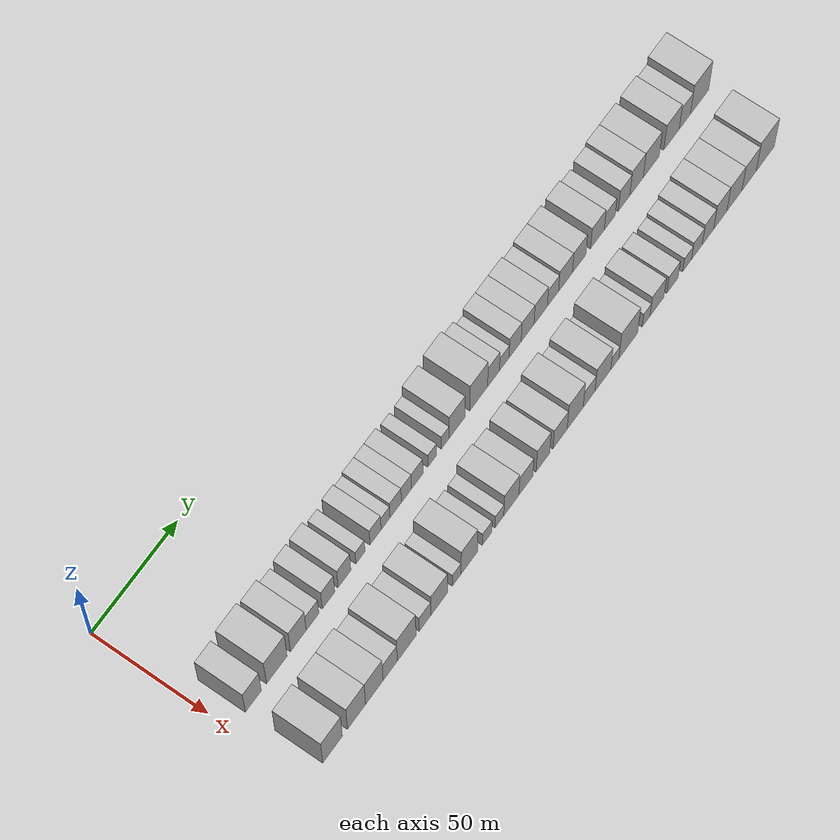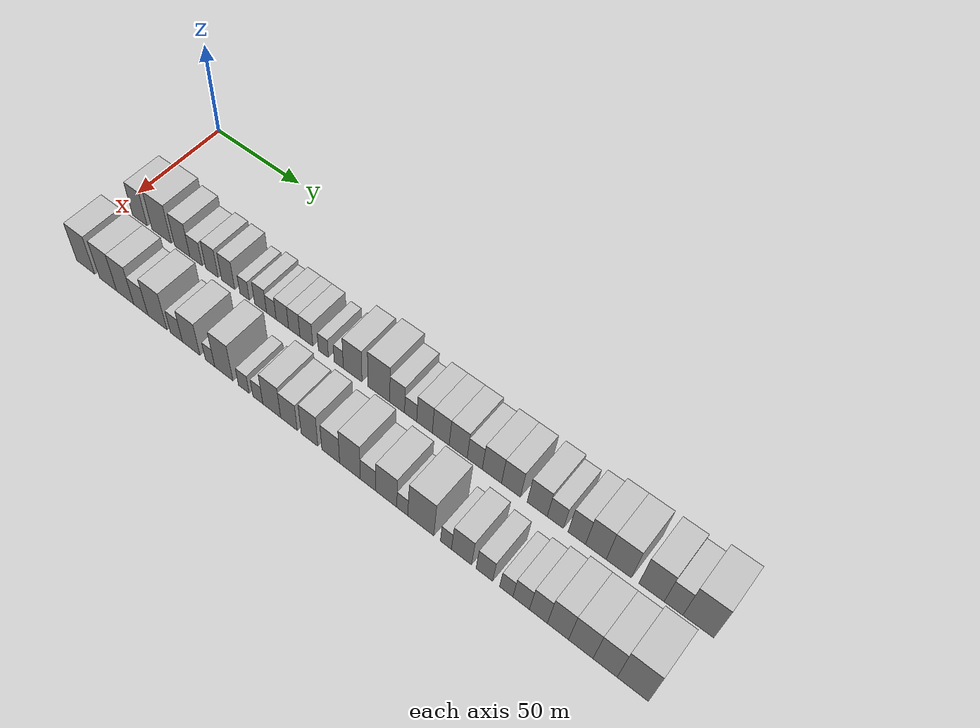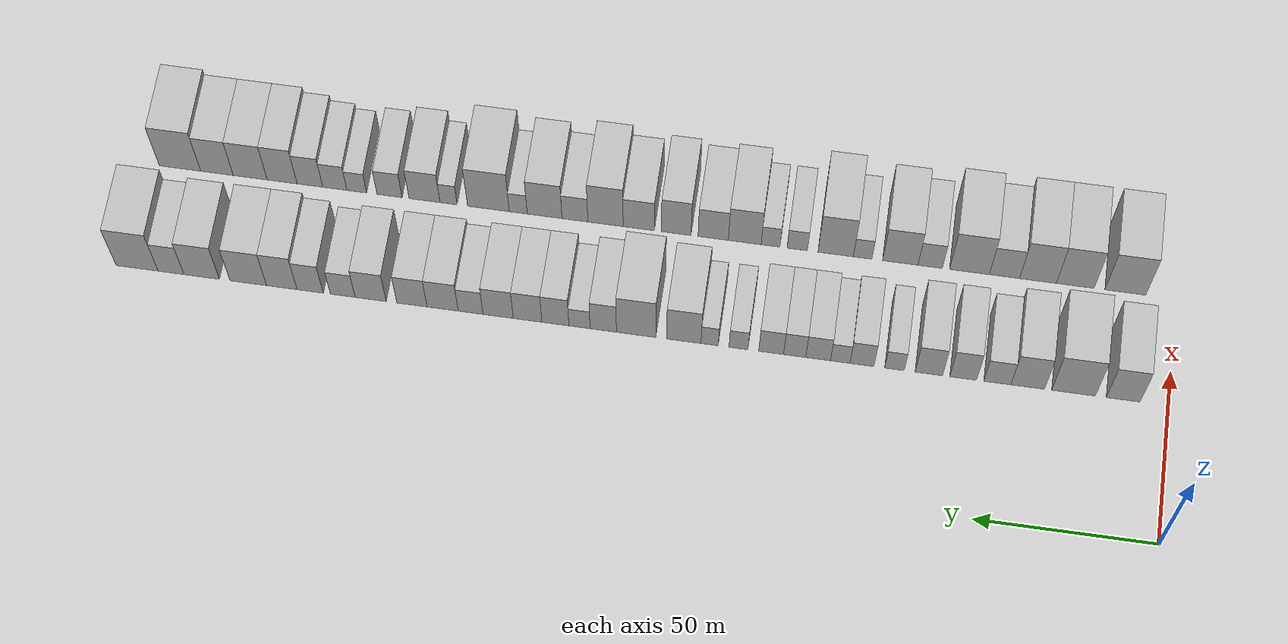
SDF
<sdf version="1.6">
 <world name="default">
  <model name="building_35">
   <static>1</static>
   <pose>50.0000 12.4085 0 0.000000 0.000000 0.000000</pose>
   <link name="link">
    <pose>0 0 10.50 0 0 0</pose>
    <collision name="collision"><geometry><box><size>20.0000 9.2569 21.0000</size></box></geometry></collision>
    <visual name="visual">
     <cast_shadows>0</cast_shadows>
     <geometry><box><size>20.0000 9.2569 21.0000</size></box></geometry>
     <material>
      <script>
       <uri>model://HANNAS_wall/materials/scripts</uri>
       <uri>model://HANNAS_wall/materials/textures</uri>
       <name>vrc/HANNAS_wall</name>
      </script>
     </material>
    </visual>
   </link>
  </model>
  <model name="building_36">
   <static>1</static>
   <pose>50.0000 26.0304 0 0.000000 0.000000 0.000000</pose>
   <link name="link">
    <pose>0 0 12.00 0 0 0</pose>
    <collision name="collision"><geometry><box><size>20.0000 11.9869 24.0000</size></box></geometry></collision>
    <visual name="visual">
     <cast_shadows>0</cast_shadows>
     <geometry><box><size>20.0000 11.9869 24.0000</size></box></geometry>
     <material>
      <script>
       <uri>model://HANNAS_wall/materials/scripts</uri>
       <uri>model://HANNAS_wall/materials/textures</uri>
       <name>vrc/HANNAS_wall</name>
      </script>
     </material>
    </visual>
   </link>
  </model>
  <model name="building_37">
   <static>1</static>
   <pose>50.0000 38.6332 0 0.000000 0.000000 0.000000</pose>
   <link name="link">
    <pose>0 0 10.50 0 0 0</pose>
    <collision name="collision"><geometry><box><size>20.0000 9.2187 21.0000</size></box></geometry></collision>
    <visual name="visual">
     <cast_shadows>0</cast_shadows>
     <geometry><box><size>20.0000 9.2187 21.0000</size></box></geometry>
     <material>
      <script>
       <uri>model://HANNAS_wall/materials/scripts</uri>
       <uri>model://HANNAS_wall/materials/textures</uri>
       <name>vrc/HANNAS_wall</name>
      </script>
     </material>
    </visual>
   </link>
  </model>
  <model name="building_38">
   <static>1</static>
   <pose>50.0000 46.9688 0 0.000000 0.000000 0.000000</pose>
   <link name="link">
    <pose>0 0 7.50 0 0 0</pose>
    <collision name="collision"><geometry><box><size>20.0000 7.4526 15.0000</size></box></geometry></collision>
    <visual name="visual">
     <cast_shadows>0</cast_shadows>
     <geometry><box><size>20.0000 7.4526 15.0000</size></box></geometry>
     <material>
      <script>
       <uri>model://HANNAS_wall/materials/scripts</uri>
       <uri>model://HANNAS_wall/materials/textures</uri>
       <name>vrc/HANNAS_wall</name>
      </script>
     </material>
    </visual>
   </link>
  </model>
  <model name="building_39">
   <static>1</static>
   <pose>50.0000 56.3891 0 0.000000 0.000000 0.000000</pose>
   <link name="link">
    <pose>0 0 9.00 0 0 0</pose>
    <collision name="collision"><geometry><box><size>20.0000 7.3880 18.0000</size></box></geometry></collision>
    <visual name="visual">
     <cast_shadows>0</cast_shadows>
     <geometry><box><size>20.0000 7.3880 18.0000</size></box></geometry>
     <material>
      <script>
       <uri>model://HANNAS_wall/materials/scripts</uri>
       <uri>model://HANNAS_wall/materials/textures</uri>
       <name>vrc/HANNAS_wall</name>
      </script>
     </material>
    </visual>
   </link>
  </model>
  <model name="building_40">
   <static>1</static>
   <pose>50.0000 65.8690 0 0.000000 0.000000 0.000000</pose>
   <link name="link">
    <pose>0 0 9.00 0 0 0</pose>
    <collision name="collision"><geometry><box><size>20.0000 7.5716 18.0000</size></box></geometry></collision>
    <visual name="visual">
     <cast_shadows>0</cast_shadows>
     <geometry><box><size>20.0000 7.5716 18.0000</size></box></geometry>
     <material>
      <script>
       <uri>model://HANNAS_wall/materials/scripts</uri>
       <uri>model://HANNAS_wall/materials/textures</uri>
       <name>vrc/HANNAS_wall</name>
      </script>
     </material>
    </visual>
   </link>
  </model>
  <model name="building_41">
   <static>1</static>
   <pose>50.0000 75.3594 0 0.000000 0.000000 0.000000</pose>
   <link name="link">
    <pose>0 0 6.00 0 0 0</pose>
    <collision name="collision"><geometry><box><size>20.0000 5.4093 12.0000</size></box></geometry></collision>
    <visual name="visual">
     <cast_shadows>0</cast_shadows>
     <geometry><box><size>20.0000 5.4093 12.0000</size></box></geometry>
     <material>
      <script>
       <uri>model://HANNAS_wall/materials/scripts</uri>
       <uri>model://HANNAS_wall/materials/textures</uri>
       <name>vrc/HANNAS_wall</name>
      </script>
     </material>
    </visual>
   </link>
  </model>
  <model name="building_42">
   <static>1</static>
   <pose>50.0000 84.3849 0 0.000000 0.000000 0.000000</pose>
   <link name="link">
    <pose>0 0 7.50 0 0 0</pose>
    <collision name="collision"><geometry><box><size>20.0000 6.6418 15.0000</size></box></geometry></collision>
    <visual name="visual">
     <cast_shadows>0</cast_shadows>
     <geometry><box><size>20.0000 6.6418 15.0000</size></box></geometry>
     <material>
      <script>
       <uri>model://HANNAS_wall/materials/scripts</uri>
       <uri>model://HANNAS_wall/materials/textures</uri>
       <name>vrc/HANNAS_wall</name>
      </script>
     </material>
    </visual>
   </link>
  </model>
  <model name="building_43">
   <static>1</static>
   <pose>50.0000 90.3973 0 0.000000 0.000000 0.000000</pose>
   <link name="link">
    <pose>0 0 6.00 0 0 0</pose>
    <collision name="collision"><geometry><box><size>20.0000 5.3829 12.0000</size></box></geometry></collision>
    <visual name="visual">
     <cast_shadows>0</cast_shadows>
     <geometry><box><size>20.0000 5.3829 12.0000</size></box></geometry>
     <material>
      <script>
       <uri>model://HANNAS_wall/materials/scripts</uri>
       <uri>model://HANNAS_wall/materials/textures</uri>
       <name>vrc/HANNAS_wall</name>
      </script>
     </material>
    </visual>
   </link>
  </model>
  <model name="building_44">
   <static>1</static>
   <pose>50.0000 96.5161 0 0.000000 0.000000 0.000000</pose>
   <link name="link">
    <pose>0 0 7.50 0 0 0</pose>
    <collision name="collision"><geometry><box><size>20.0000 6.8548 15.0000</size></box></geometry></collision>
    <visual name="visual">
     <cast_shadows>0</cast_shadows>
     <geometry><box><size>20.0000 6.8548 15.0000</size></box></geometry>
     <material>
      <script>
       <uri>model://HANNAS_wall/materials/scripts</uri>
       <uri>model://HANNAS_wall/materials/textures</uri>
       <name>vrc/HANNAS_wall</name>
      </script>
     </material>
    </visual>
   </link>
  </model>
  <model name="building_45">
   <static>1</static>
   <pose>50.0000 103.0263 0 0.000000 0.000000 0.000000</pose>
   <link name="link">
    <pose>0 0 7.50 0 0 0</pose>
    <collision name="collision"><geometry><box><size>20.0000 6.1654 15.0000</size></box></geometry></collision>
    <visual name="visual">
     <cast_shadows>0</cast_shadows>
     <geometry><box><size>20.0000 6.1654 15.0000</size></box></geometry>
     <material>
      <script>
       <uri>model://HANNAS_wall/materials/scripts</uri>
       <uri>model://HANNAS_wall/materials/textures</uri>
       <name>vrc/HANNAS_wall</name>
      </script>
     </material>
    </visual>
   </link>
  </model>
  <model name="building_46">
   <static>1</static>
   <pose>50.0000 109.5577 0 0.000000 0.000000 0.000000</pose>
   <link name="link">
    <pose>0 0 7.50 0 0 0</pose>
    <collision name="collision"><geometry><box><size>20.0000 6.8975 15.0000</size></box></geometry></collision>
    <visual name="visual">
     <cast_shadows>0</cast_shadows>
     <geometry><box><size>20.0000 6.8975 15.0000</size></box></geometry>
     <material>
      <script>
       <uri>model://HANNAS_wall/materials/scripts</uri>
       <uri>model://HANNAS_wall/materials/textures</uri>
       <name>vrc/HANNAS_wall</name>
      </script>
     </material>
    </visual>
   </link>
  </model>
  <model name="building_47">
   <static>1</static>
   <pose>50.0000 118.6466 0 0.000000 0.000000 0.000000</pose>
   <link name="link">
    <pose>0 0 6.00 0 0 0</pose>
    <collision name="collision"><geometry><box><size>20.0000 5.2803 12.0000</size></box></geometry></collision>
    <visual name="visual">
     <cast_shadows>0</cast_shadows>
     <geometry><box><size>20.0000 5.2803 12.0000</size></box></geometry>
     <material>
      <script>
       <uri>model://HANNAS_wall/materials/scripts</uri>
       <uri>model://HANNAS_wall/materials/textures</uri>
       <name>vrc/HANNAS_wall</name>
      </script>
     </material>
    </visual>
   </link>
  </model>
  <model name="building_48">
   <static>1</static>
   <pose>50.0000 126.6877 0 0.000000 0.000000 0.000000</pose>
   <link name="link">
    <pose>0 0 6.00 0 0 0</pose>
    <collision name="collision"><geometry><box><size>20.0000 4.8019 12.0000</size></box></geometry></collision>
    <visual name="visual">
     <cast_shadows>0</cast_shadows>
     <geometry><box><size>20.0000 4.8019 12.0000</size></box></geometry>
     <material>
      <script>
       <uri>model://HANNAS_wall/materials/scripts</uri>
       <uri>model://HANNAS_wall/materials/textures</uri>
       <name>vrc/HANNAS_wall</name>
      </script>
     </material>
    </visual>
   </link>
  </model>
  <model name="building_49">
   <static>1</static>
   <pose>50.0000 133.8981 0 0.000000 0.000000 0.000000</pose>
   <link name="link">
    <pose>0 0 10.50 0 0 0</pose>
    <collision name="collision"><geometry><box><size>20.0000 9.6188 21.0000</size></box></geometry></collision>
    <visual name="visual">
     <cast_shadows>0</cast_shadows>
     <geometry><box><size>20.0000 9.6188 21.0000</size></box></geometry>
     <material>
      <script>
       <uri>model://HANNAS_wall/materials/scripts</uri>
       <uri>model://HANNAS_wall/materials/textures</uri>
       <name>vrc/HANNAS_wall</name>
      </script>
     </material>
    </visual>
   </link>
  </model>
  <model name="building_50">
   <static>1</static>
   <pose>50.0000 147.2006 0 0.000000 0.000000 0.000000</pose>
   <link name="link">
    <pose>0 0 12.00 0 0 0</pose>
    <collision name="collision"><geometry><box><size>20.0000 10.9862 24.0000</size></box></geometry></collision>
    <visual name="visual">
     <cast_shadows>0</cast_shadows>
     <geometry><box><size>20.0000 10.9862 24.0000</size></box></geometry>
     <material>
      <script>
       <uri>model://HANNAS_wall/materials/scripts</uri>
       <uri>model://HANNAS_wall/materials/textures</uri>
       <name>vrc/HANNAS_wall</name>
      </script>
     </material>
    </visual>
   </link>
  </model>
  <model name="building_51">
   <static>1</static>
   <pose>50.0000 156.3773 0 0.000000 0.000000 0.000000</pose>
   <link name="link">
    <pose>0 0 9.00 0 0 0</pose>
    <collision name="collision"><geometry><box><size>20.0000 7.3672 18.0000</size></box></geometry></collision>
    <visual name="visual">
     <cast_shadows>0</cast_shadows>
     <geometry><box><size>20.0000 7.3672 18.0000</size></box></geometry>
     <material>
      <script>
       <uri>model://HANNAS_wall/materials/scripts</uri>
       <uri>model://HANNAS_wall/materials/textures</uri>
       <name>vrc/HANNAS_wall</name>
      </script>
     </material>
    </visual>
   </link>
  </model>
  <model name="building_52">
   <static>1</static>
   <pose>50.0000 163.0314 0 0.000000 0.000000 0.000000</pose>
   <link name="link">
    <pose>0 0 6.00 0 0 0</pose>
    <collision name="collision"><geometry><box><size>20.0000 5.9410 12.0000</size></box></geometry></collision>
    <visual name="visual">
     <cast_shadows>0</cast_shadows>
     <geometry><box><size>20.0000 5.9410 12.0000</size></box></geometry>
     <material>
      <script>
       <uri>model://HANNAS_wall/materials/scripts</uri>
       <uri>model://HANNAS_wall/materials/textures</uri>
       <name>vrc/HANNAS_wall</name>
      </script>
     </material>
    </visual>
   </link>
  </model>
  <model name="building_53">
   <static>1</static>
   <pose>50.0000 169.7892 0 0.000000 0.000000 0.000000</pose>
   <link name="link">
    <pose>0 0 9.00 0 0 0</pose>
    <collision name="collision"><geometry><box><size>20.0000 7.5745 18.0000</size></box></geometry></collision>
    <visual name="visual">
     <cast_shadows>0</cast_shadows>
     <geometry><box><size>20.0000 7.5745 18.0000</size></box></geometry>
     <material>
      <script>
       <uri>model://HANNAS_wall/materials/scripts</uri>
       <uri>model://HANNAS_wall/materials/textures</uri>
       <name>vrc/HANNAS_wall</name>
      </script>
     </material>
    </visual>
   </link>
  </model>
  <model name="building_54">
   <static>1</static>
   <pose>50.0000 177.5934 0 0.000000 0.000000 0.000000</pose>
   <link name="link">
    <pose>0 0 9.00 0 0 0</pose>
    <collision name="collision"><geometry><box><size>20.0000 8.0339 18.0000</size></box></geometry></collision>
    <visual name="visual">
     <cast_shadows>0</cast_shadows>
     <geometry><box><size>20.0000 8.0339 18.0000</size></box></geometry>
     <material>
      <script>
       <uri>model://HANNAS_wall/materials/scripts</uri>
       <uri>model://HANNAS_wall/materials/textures</uri>
       <name>vrc/HANNAS_wall</name>
      </script>
     </material>
    </visual>
   </link>
  </model>
  <model name="building_55">
   <static>1</static>
   <pose>50.0000 185.8475 0 0.000000 0.000000 0.000000</pose>
   <link name="link">
    <pose>0 0 9.00 0 0 0</pose>
    <collision name="collision"><geometry><box><size>20.0000 8.4742 18.0000</size></box></geometry></collision>
    <visual name="visual">
     <cast_shadows>0</cast_shadows>
     <geometry><box><size>20.0000 8.4742 18.0000</size></box></geometry>
     <material>
      <script>
       <uri>model://HANNAS_wall/materials/scripts</uri>
       <uri>model://HANNAS_wall/materials/textures</uri>
       <name>vrc/HANNAS_wall</name>
      </script>
     </material>
    </visual>
   </link>
  </model>
  <model name="building_56">
   <static>1</static>
   <pose>50.0000 193.5864 0 0.000000 0.000000 0.000000</pose>
   <link name="link">
    <pose>0 0 7.50 0 0 0</pose>
    <collision name="collision"><geometry><box><size>20.0000 7.0035 15.0000</size></box></geometry></collision>
    <visual name="visual">
     <cast_shadows>0</cast_shadows>
     <geometry><box><size>20.0000 7.0035 15.0000</size></box></geometry>
     <material>
      <script>
       <uri>model://HANNAS_wall/materials/scripts</uri>
       <uri>model://HANNAS_wall/materials/textures</uri>
       <name>vrc/HANNAS_wall</name>
      </script>
     </material>
    </visual>
   </link>
  </model>
  <model name="building_57">
   <static>1</static>
   <pose>50.0000 201.4787 0 0.000000 0.000000 0.000000</pose>
   <link name="link">
    <pose>0 0 9.00 0 0 0</pose>
    <collision name="collision"><geometry><box><size>20.0000 8.7810 18.0000</size></box></geometry></collision>
    <visual name="visual">
     <cast_shadows>0</cast_shadows>
     <geometry><box><size>20.0000 8.7810 18.0000</size></box></geometry>
     <material>
      <script>
       <uri>model://HANNAS_wall/materials/scripts</uri>
       <uri>model://HANNAS_wall/materials/textures</uri>
       <name>vrc/HANNAS_wall</name>
      </script>
     </material>
    </visual>
   </link>
  </model>
  <model name="building_58">
   <static>1</static>
   <pose>50.0000 210.1303 0 0.000000 0.000000 0.000000</pose>
   <link name="link">
    <pose>0 0 9.00 0 0 0</pose>
    <collision name="collision"><geometry><box><size>20.0000 8.5223 18.0000</size></box></geometry></collision>
    <visual name="visual">
     <cast_shadows>0</cast_shadows>
     <geometry><box><size>20.0000 8.5223 18.0000</size></box></geometry>
     <material>
      <script>
       <uri>model://HANNAS_wall/materials/scripts</uri>
       <uri>model://HANNAS_wall/materials/textures</uri>
       <name>vrc/HANNAS_wall</name>
      </script>
     </material>
    </visual>
   </link>
  </model>
  <model name="building_59">
   <static>1</static>
   <pose>50.0000 221.7778 0 0.000000 0.000000 0.000000</pose>
   <link name="link">
    <pose>0 0 9.00 0 0 0</pose>
    <collision name="collision"><geometry><box><size>20.0000 8.7728 18.0000</size></box></geometry></collision>
    <visual name="visual">
     <cast_shadows>0</cast_shadows>
     <geometry><box><size>20.0000 8.7728 18.0000</size></box></geometry>
     <material>
      <script>
       <uri>model://HANNAS_wall/materials/scripts</uri>
       <uri>model://HANNAS_wall/materials/textures</uri>
       <name>vrc/HANNAS_wall</name>
      </script>
     </material>
    </visual>
   </link>
  </model>
  <model name="building_60">
   <static>1</static>
   <pose>50.0000 229.6762 0 0.000000 0.000000 0.000000</pose>
   <link name="link">
    <pose>0 0 7.50 0 0 0</pose>
    <collision name="collision"><geometry><box><size>20.0000 7.0239 15.0000</size></box></geometry></collision>
    <visual name="visual">
     <cast_shadows>0</cast_shadows>
     <geometry><box><size>20.0000 7.0239 15.0000</size></box></geometry>
     <material>
      <script>
       <uri>model://HANNAS_wall/materials/scripts</uri>
       <uri>model://HANNAS_wall/materials/textures</uri>
       <name>vrc/HANNAS_wall</name>
      </script>
     </material>
    </visual>
   </link>
  </model>
  <model name="building_61">
   <static>1</static>
   <pose>50.0000 238.8993 0 0.000000 0.000000 0.000000</pose>
   <link name="link">
    <pose>0 0 9.00 0 0 0</pose>
    <collision name="collision"><geometry><box><size>20.0000 7.4224 18.0000</size></box></geometry></collision>
    <visual name="visual">
     <cast_shadows>0</cast_shadows>
     <geometry><box><size>20.0000 7.4224 18.0000</size></box></geometry>
     <material>
      <script>
       <uri>model://HANNAS_wall/materials/scripts</uri>
       <uri>model://HANNAS_wall/materials/textures</uri>
       <name>vrc/HANNAS_wall</name>
      </script>
     </material>
    </visual>
   </link>
  </model>
  <model name="building_62">
   <static>1</static>
   <pose>50.0000 246.9462 0 0.000000 0.000000 0.000000</pose>
   <link name="link">
    <pose>0 0 10.50 0 0 0</pose>
    <collision name="collision"><geometry><box><size>20.0000 8.6713 21.0000</size></box></geometry></collision>
    <visual name="visual">
     <cast_shadows>0</cast_shadows>
     <geometry><box><size>20.0000 8.6713 21.0000</size></box></geometry>
     <material>
      <script>
       <uri>model://HANNAS_wall/materials/scripts</uri>
       <uri>model://HANNAS_wall/materials/textures</uri>
       <name>vrc/HANNAS_wall</name>
      </script>
     </material>
    </visual>
   </link>
  </model>
  <model name="building_63">
   <static>1</static>
   <pose>50.0000 256.4718 0 0.000000 0.000000 0.000000</pose>
   <link name="link">
    <pose>0 0 10.50 0 0 0</pose>
    <collision name="collision"><geometry><box><size>20.0000 10.3799 21.0000</size></box></geometry></collision>
    <visual name="visual">
     <cast_shadows>0</cast_shadows>
     <geometry><box><size>20.0000 10.3799 21.0000</size></box></geometry>
     <material>
      <script>
       <uri>model://HANNAS_wall/materials/scripts</uri>
       <uri>model://HANNAS_wall/materials/textures</uri>
       <name>vrc/HANNAS_wall</name>
      </script>
     </material>
    </visual>
   </link>
  </model>
  <model name="building_64">
   <static>1</static>
   <pose>50.0000 269.7114 0 0.000000 0.000000 0.000000</pose>
   <link name="link">
    <pose>0 0 10.50 0 0 0</pose>
    <collision name="collision"><geometry><box><size>20.0000 10.0992 21.0000</size></box></geometry></collision>
    <visual name="visual">
     <cast_shadows>0</cast_shadows>
     <geometry><box><size>20.0000 10.0992 21.0000</size></box></geometry>
     <material>
      <script>
       <uri>model://HANNAS_wall/materials/scripts</uri>
       <uri>model://HANNAS_wall/materials/textures</uri>
       <name>vrc/HANNAS_wall</name>
      </script>
     </material>
    </visual>
   </link>
  </model>
  <model name="building_65">
   <static>1</static>
   <pose>50.0000 278.4431 0 0.000000 0.000000 0.000000</pose>
   <link name="link">
    <pose>0 0 9.00 0 0 0</pose>
    <collision name="collision"><geometry><box><size>20.0000 7.3643 18.0000</size></box></geometry></collision>
    <visual name="visual">
     <cast_shadows>0</cast_shadows>
     <geometry><box><size>20.0000 7.3643 18.0000</size></box></geometry>
     <material>
      <script>
       <uri>model://HANNAS_wall/materials/scripts</uri>
       <uri>model://HANNAS_wall/materials/textures</uri>
       <name>vrc/HANNAS_wall</name>
      </script>
     </material>
    </visual>
   </link>
  </model>
  <model name="building_66">
   <static>1</static>
   <pose>50.0000 288.1061 0 0.000000 0.000000 0.000000</pose>
   <link name="link">
    <pose>0 0 12.00 0 0 0</pose>
    <collision name="collision"><geometry><box><size>20.0000 11.9617 24.0000</size></box></geometry></collision>
    <visual name="visual">
     <cast_shadows>0</cast_shadows>
     <geometry><box><size>20.0000 11.9617 24.0000</size></box></geometry>
     <material>
      <script>
       <uri>model://HANNAS_wall/materials/scripts</uri>
       <uri>model://HANNAS_wall/materials/textures</uri>
       <name>vrc/HANNAS_wall</name>
      </script>
     </material>
    </visual>
   </link>
  </model>
  <model name="building_94">
   <static>1</static>
   <pose>82.0000 14.1284 0 0.000000 0.000000 0.000000</pose>
   <link name="link">
    <pose>0 0 12.00 0 0 0</pose>
    <collision name="collision"><geometry><box><size>20.0000 11.4049 24.0000</size></box></geometry></collision>
    <visual name="visual">
     <cast_shadows>0</cast_shadows>
     <geometry><box><size>20.0000 11.4049 24.0000</size></box></geometry>
     <material>
      <script>
       <uri>model://HANNAS_wall/materials/scripts</uri>
       <uri>model://HANNAS_wall/materials/textures</uri>
       <name>vrc/HANNAS_wall</name>
      </script>
     </material>
    </visual>
   </link>
  </model>
  <model name="building_95">
   <static>1</static>
   <pose>82.0000 28.1155 0 0.000000 0.000000 0.000000</pose>
   <link name="link">
    <pose>0 0 12.00 0 0 0</pose>
    <collision name="collision"><geometry><box><size>20.0000 10.5695 24.0000</size></box></geometry></collision>
    <visual name="visual">
     <cast_shadows>0</cast_shadows>
     <geometry><box><size>20.0000 10.5695 24.0000</size></box></geometry>
     <material>
      <script>
       <uri>model://HANNAS_wall/materials/scripts</uri>
       <uri>model://HANNAS_wall/materials/textures</uri>
       <name>vrc/HANNAS_wall</name>
      </script>
     </material>
    </visual>
   </link>
  </model>
  <model name="building_96">
   <static>1</static>
   <pose>82.0000 38.5590 0 0.000000 0.000000 0.000000</pose>
   <link name="link">
    <pose>0 0 12.00 0 0 0</pose>
    <collision name="collision"><geometry><box><size>20.0000 10.3175 24.0000</size></box></geometry></collision>
    <visual name="visual">
     <cast_shadows>0</cast_shadows>
     <geometry><box><size>20.0000 10.3175 24.0000</size></box></geometry>
     <material>
      <script>
       <uri>model://HANNAS_wall/materials/scripts</uri>
       <uri>model://HANNAS_wall/materials/textures</uri>
       <name>vrc/HANNAS_wall</name>
      </script>
     </material>
    </visual>
   </link>
  </model>
  <model name="building_97">
   <static>1</static>
   <pose>82.0000 47.9423 0 0.000000 0.000000 0.000000</pose>
   <link name="link">
    <pose>0 0 9.00 0 0 0</pose>
    <collision name="collision"><geometry><box><size>20.0000 8.4489 18.0000</size></box></geometry></collision>
    <visual name="visual">
     <cast_shadows>0</cast_shadows>
     <geometry><box><size>20.0000 8.4489 18.0000</size></box></geometry>
     <material>
      <script>
       <uri>model://HANNAS_wall/materials/scripts</uri>
       <uri>model://HANNAS_wall/materials/textures</uri>
       <name>vrc/HANNAS_wall</name>
      </script>
     </material>
    </visual>
   </link>
  </model>
  <model name="building_98">
   <static>1</static>
   <pose>82.0000 57.7339 0 0.000000 0.000000 0.000000</pose>
   <link name="link">
    <pose>0 0 12.00 0 0 0</pose>
    <collision name="collision"><geometry><box><size>20.0000 11.1344 24.0000</size></box></geometry></collision>
    <visual name="visual">
     <cast_shadows>0</cast_shadows>
     <geometry><box><size>20.0000 11.1344 24.0000</size></box></geometry>
     <material>
      <script>
       <uri>model://HANNAS_wall/materials/scripts</uri>
       <uri>model://HANNAS_wall/materials/textures</uri>
       <name>vrc/HANNAS_wall</name>
      </script>
     </material>
    </visual>
   </link>
  </model>
  <model name="building_99">
   <static>1</static>
   <pose>82.0000 68.7336 0 0.000000 0.000000 0.000000</pose>
   <link name="link">
    <pose>0 0 7.50 0 0 0</pose>
    <collision name="collision"><geometry><box><size>20.0000 6.8648 15.0000</size></box></geometry></collision>
    <visual name="visual">
     <cast_shadows>0</cast_shadows>
     <geometry><box><size>20.0000 6.8648 15.0000</size></box></geometry>
     <material>
      <script>
       <uri>model://HANNAS_wall/materials/scripts</uri>
       <uri>model://HANNAS_wall/materials/textures</uri>
       <name>vrc/HANNAS_wall</name>
      </script>
     </material>
    </visual>
   </link>
  </model>
  <model name="building_100">
   <static>1</static>
   <pose>82.0000 77.1396 0 0.000000 0.000000 0.000000</pose>
   <link name="link">
    <pose>0 0 10.50 0 0 0</pose>
    <collision name="collision"><geometry><box><size>20.0000 9.9472 21.0000</size></box></geometry></collision>
    <visual name="visual">
     <cast_shadows>0</cast_shadows>
     <geometry><box><size>20.0000 9.9472 21.0000</size></box></geometry>
     <material>
      <script>
       <uri>model://HANNAS_wall/materials/scripts</uri>
       <uri>model://HANNAS_wall/materials/textures</uri>
       <name>vrc/HANNAS_wall</name>
      </script>
     </material>
    </visual>
   </link>
  </model>
  <model name="building_101">
   <static>1</static>
   <pose>82.0000 87.7354 0 0.000000 0.000000 0.000000</pose>
   <link name="link">
    <pose>0 0 6.00 0 0 0</pose>
    <collision name="collision"><geometry><box><size>20.0000 5.2445 12.0000</size></box></geometry></collision>
    <visual name="visual">
     <cast_shadows>0</cast_shadows>
     <geometry><box><size>20.0000 5.2445 12.0000</size></box></geometry>
     <material>
      <script>
       <uri>model://HANNAS_wall/materials/scripts</uri>
       <uri>model://HANNAS_wall/materials/textures</uri>
       <name>vrc/HANNAS_wall</name>
      </script>
     </material>
    </visual>
   </link>
  </model>
  <model name="building_102">
   <static>1</static>
   <pose>82.0000 95.3330 0 0.000000 0.000000 0.000000</pose>
   <link name="link">
    <pose>0 0 12.00 0 0 0</pose>
    <collision name="collision"><geometry><box><size>20.0000 9.9505 24.0000</size></box></geometry></collision>
    <visual name="visual">
     <cast_shadows>0</cast_shadows>
     <geometry><box><size>20.0000 9.9505 24.0000</size></box></geometry>
     <material>
      <script>
       <uri>model://HANNAS_wall/materials/scripts</uri>
       <uri>model://HANNAS_wall/materials/textures</uri>
       <name>vrc/HANNAS_wall</name>
      </script>
     </material>
    </visual>
   </link>
  </model>
  <model name="building_103">
   <static>1</static>
   <pose>82.0000 106.1833 0 0.000000 0.000000 0.000000</pose>
   <link name="link">
    <pose>0 0 6.00 0 0 0</pose>
    <collision name="collision"><geometry><box><size>20.0000 5.7502 12.0000</size></box></geometry></collision>
    <visual name="visual">
     <cast_shadows>0</cast_shadows>
     <geometry><box><size>20.0000 5.7502 12.0000</size></box></geometry>
     <material>
      <script>
       <uri>model://HANNAS_wall/materials/scripts</uri>
       <uri>model://HANNAS_wall/materials/textures</uri>
       <name>vrc/HANNAS_wall</name>
      </script>
     </material>
    </visual>
   </link>
  </model>
  <model name="building_104">
   <static>1</static>
   <pose>82.0000 113.7118 0 0.000000 0.000000 0.000000</pose>
   <link name="link">
    <pose>0 0 6.00 0 0 0</pose>
    <collision name="collision"><geometry><box><size>20.0000 5.3068 12.0000</size></box></geometry></collision>
    <visual name="visual">
     <cast_shadows>0</cast_shadows>
     <geometry><box><size>20.0000 5.3068 12.0000</size></box></geometry>
     <material>
      <script>
       <uri>model://HANNAS_wall/materials/scripts</uri>
       <uri>model://HANNAS_wall/materials/textures</uri>
       <name>vrc/HANNAS_wall</name>
      </script>
     </material>
    </visual>
   </link>
  </model>
  <model name="building_105">
   <static>1</static>
   <pose>82.0000 121.0133 0 0.000000 0.000000 0.000000</pose>
   <link name="link">
    <pose>0 0 10.50 0 0 0</pose>
    <collision name="collision"><geometry><box><size>20.0000 9.2962 21.0000</size></box></geometry></collision>
    <visual name="visual">
     <cast_shadows>0</cast_shadows>
     <geometry><box><size>20.0000 9.2962 21.0000</size></box></geometry>
     <material>
      <script>
       <uri>model://HANNAS_wall/materials/scripts</uri>
       <uri>model://HANNAS_wall/materials/textures</uri>
       <name>vrc/HANNAS_wall</name>
      </script>
     </material>
    </visual>
   </link>
  </model>
  <model name="building_106">
   <static>1</static>
   <pose>82.0000 129.9487 0 0.000000 0.000000 0.000000</pose>
   <link name="link">
    <pose>0 0 9.00 0 0 0</pose>
    <collision name="collision"><geometry><box><size>20.0000 8.5746 18.0000</size></box></geometry></collision>
    <visual name="visual">
     <cast_shadows>0</cast_shadows>
     <geometry><box><size>20.0000 8.5746 18.0000</size></box></geometry>
     <material>
      <script>
       <uri>model://HANNAS_wall/materials/scripts</uri>
       <uri>model://HANNAS_wall/materials/textures</uri>
       <name>vrc/HANNAS_wall</name>
      </script>
     </material>
    </visual>
   </link>
  </model>
  <model name="building_107">
   <static>1</static>
   <pose>82.0000 140.4479 0 0.000000 0.000000 0.000000</pose>
   <link name="link">
    <pose>0 0 10.50 0 0 0</pose>
    <collision name="collision"><geometry><box><size>20.0000 8.4239 21.0000</size></box></geometry></collision>
    <visual name="visual">
     <cast_shadows>0</cast_shadows>
     <geometry><box><size>20.0000 8.4239 21.0000</size></box></geometry>
     <material>
      <script>
       <uri>model://HANNAS_wall/materials/scripts</uri>
       <uri>model://HANNAS_wall/materials/textures</uri>
       <name>vrc/HANNAS_wall</name>
      </script>
     </material>
    </visual>
   </link>
  </model>
  <model name="building_108">
   <static>1</static>
   <pose>82.0000 151.0749 0 0.000000 0.000000 0.000000</pose>
   <link name="link">
    <pose>0 0 9.00 0 0 0</pose>
    <collision name="collision"><geometry><box><size>20.0000 8.8301 18.0000</size></box></geometry></collision>
    <visual name="visual">
     <cast_shadows>0</cast_shadows>
     <geometry><box><size>20.0000 8.8301 18.0000</size></box></geometry>
     <material>
      <script>
       <uri>model://HANNAS_wall/materials/scripts</uri>
       <uri>model://HANNAS_wall/materials/textures</uri>
       <name>vrc/HANNAS_wall</name>
      </script>
     </material>
    </visual>
   </link>
  </model>
  <model name="building_109">
   <static>1</static>
   <pose>82.0000 160.5138 0 0.000000 0.000000 0.000000</pose>
   <link name="link">
    <pose>0 0 12.00 0 0 0</pose>
    <collision name="collision"><geometry><box><size>20.0000 10.0476 24.0000</size></box></geometry></collision>
    <visual name="visual">
     <cast_shadows>0</cast_shadows>
     <geometry><box><size>20.0000 10.0476 24.0000</size></box></geometry>
     <material>
      <script>
       <uri>model://HANNAS_wall/materials/scripts</uri>
       <uri>model://HANNAS_wall/materials/textures</uri>
       <name>vrc/HANNAS_wall</name>
      </script>
     </material>
    </visual>
   </link>
  </model>
  <model name="building_110">
   <static>1</static>
   <pose>82.0000 169.2278 0 0.000000 0.000000 0.000000</pose>
   <link name="link">
    <pose>0 0 7.50 0 0 0</pose>
    <collision name="collision"><geometry><box><size>20.0000 7.3805 15.0000</size></box></geometry></collision>
    <visual name="visual">
     <cast_shadows>0</cast_shadows>
     <geometry><box><size>20.0000 7.3805 15.0000</size></box></geometry>
     <material>
      <script>
       <uri>model://HANNAS_wall/materials/scripts</uri>
       <uri>model://HANNAS_wall/materials/textures</uri>
       <name>vrc/HANNAS_wall</name>
      </script>
     </material>
    </visual>
   </link>
  </model>
  <model name="building_111">
   <static>1</static>
   <pose>82.0000 177.8782 0 0.000000 0.000000 0.000000</pose>
   <link name="link">
    <pose>0 0 10.50 0 0 0</pose>
    <collision name="collision"><geometry><box><size>20.0000 9.9202 21.0000</size></box></geometry></collision>
    <visual name="visual">
     <cast_shadows>0</cast_shadows>
     <geometry><box><size>20.0000 9.9202 21.0000</size></box></geometry>
     <material>
      <script>
       <uri>model://HANNAS_wall/materials/scripts</uri>
       <uri>model://HANNAS_wall/materials/textures</uri>
       <name>vrc/HANNAS_wall</name>
      </script>
     </material>
    </visual>
   </link>
  </model>
  <model name="building_112">
   <static>1</static>
   <pose>82.0000 185.3984 0 0.000000 0.000000 0.000000</pose>
   <link name="link">
    <pose>0 0 6.00 0 0 0</pose>
    <collision name="collision"><geometry><box><size>20.0000 5.1202 12.0000</size></box></geometry></collision>
    <visual name="visual">
     <cast_shadows>0</cast_shadows>
     <geometry><box><size>20.0000 5.1202 12.0000</size></box></geometry>
     <material>
      <script>
       <uri>model://HANNAS_wall/materials/scripts</uri>
       <uri>model://HANNAS_wall/materials/textures</uri>
       <name>vrc/HANNAS_wall</name>
      </script>
     </material>
    </visual>
   </link>
  </model>
  <model name="building_113">
   <static>1</static>
   <pose>82.0000 193.9222 0 0.000000 0.000000 0.000000</pose>
   <link name="link">
    <pose>0 0 12.00 0 0 0</pose>
    <collision name="collision"><geometry><box><size>20.0000 11.9275 24.0000</size></box></geometry></collision>
    <visual name="visual">
     <cast_shadows>0</cast_shadows>
     <geometry><box><size>20.0000 11.9275 24.0000</size></box></geometry>
     <material>
      <script>
       <uri>model://HANNAS_wall/materials/scripts</uri>
       <uri>model://HANNAS_wall/materials/textures</uri>
       <name>vrc/HANNAS_wall</name>
      </script>
     </material>
    </visual>
   </link>
  </model>
  <model name="building_114">
   <static>1</static>
   <pose>82.0000 205.3388 0 0.000000 0.000000 0.000000</pose>
   <link name="link">
    <pose>0 0 6.00 0 0 0</pose>
    <collision name="collision"><geometry><box><size>20.0000 4.9057 12.0000</size></box></geometry></collision>
    <visual name="visual">
     <cast_shadows>0</cast_shadows>
     <geometry><box><size>20.0000 4.9057 12.0000</size></box></geometry>
     <material>
      <script>
       <uri>model://HANNAS_wall/materials/scripts</uri>
       <uri>model://HANNAS_wall/materials/textures</uri>
       <name>vrc/HANNAS_wall</name>
      </script>
     </material>
    </visual>
   </link>
  </model>
  <model name="building_115">
   <static>1</static>
   <pose>82.0000 212.2258 0 0.000000 0.000000 0.000000</pose>
   <link name="link">
    <pose>0 0 9.00 0 0 0</pose>
    <collision name="collision"><geometry><box><size>20.0000 8.8683 18.0000</size></box></geometry></collision>
    <visual name="visual">
     <cast_shadows>0</cast_shadows>
     <geometry><box><size>20.0000 8.8683 18.0000</size></box></geometry>
     <material>
      <script>
       <uri>model://HANNAS_wall/materials/scripts</uri>
       <uri>model://HANNAS_wall/materials/textures</uri>
       <name>vrc/HANNAS_wall</name>
      </script>
     </material>
    </visual>
   </link>
  </model>
  <model name="building_116">
   <static>1</static>
   <pose>82.0000 222.2559 0 0.000000 0.000000 0.000000</pose>
   <link name="link">
    <pose>0 0 7.50 0 0 0</pose>
    <collision name="collision"><geometry><box><size>20.0000 7.1918 15.0000</size></box></geometry></collision>
    <visual name="visual">
     <cast_shadows>0</cast_shadows>
     <geometry><box><size>20.0000 7.1918 15.0000</size></box></geometry>
     <material>
      <script>
       <uri>model://HANNAS_wall/materials/scripts</uri>
       <uri>model://HANNAS_wall/materials/textures</uri>
       <name>vrc/HANNAS_wall</name>
      </script>
     </material>
    </visual>
   </link>
  </model>
  <model name="building_117">
   <static>1</static>
   <pose>82.0000 231.6775 0 0.000000 0.000000 0.000000</pose>
   <link name="link">
    <pose>0 0 6.00 0 0 0</pose>
    <collision name="collision"><geometry><box><size>20.0000 5.6513 12.0000</size></box></geometry></collision>
    <visual name="visual">
     <cast_shadows>0</cast_shadows>
     <geometry><box><size>20.0000 5.6513 12.0000</size></box></geometry>
     <material>
      <script>
       <uri>model://HANNAS_wall/materials/scripts</uri>
       <uri>model://HANNAS_wall/materials/textures</uri>
       <name>vrc/HANNAS_wall</name>
      </script>
     </material>
    </visual>
   </link>
  </model>
  <model name="building_118">
   <static>1</static>
   <pose>82.0000 237.9705 0 0.000000 0.000000 0.000000</pose>
   <link name="link">
    <pose>0 0 7.50 0 0 0</pose>
    <collision name="collision"><geometry><box><size>20.0000 6.9347 15.0000</size></box></geometry></collision>
    <visual name="visual">
     <cast_shadows>0</cast_shadows>
     <geometry><box><size>20.0000 6.9347 15.0000</size></box></geometry>
     <material>
      <script>
       <uri>model://HANNAS_wall/materials/scripts</uri>
       <uri>model://HANNAS_wall/materials/textures</uri>
       <name>vrc/HANNAS_wall</name>
      </script>
     </material>
    </visual>
   </link>
  </model>
  <model name="building_119">
   <static>1</static>
   <pose>82.0000 245.1353 0 0.000000 0.000000 0.000000</pose>
   <link name="link">
    <pose>0 0 9.00 0 0 0</pose>
    <collision name="collision"><geometry><box><size>20.0000 7.3949 18.0000</size></box></geometry></collision>
    <visual name="visual">
     <cast_shadows>0</cast_shadows>
     <geometry><box><size>20.0000 7.3949 18.0000</size></box></geometry>
     <material>
      <script>
       <uri>model://HANNAS_wall/materials/scripts</uri>
       <uri>model://HANNAS_wall/materials/textures</uri>
       <name>vrc/HANNAS_wall</name>
      </script>
     </material>
    </visual>
   </link>
  </model>
  <model name="building_120">
   <static>1</static>
   <pose>82.0000 253.1562 0 0.000000 0.000000 0.000000</pose>
   <link name="link">
    <pose>0 0 10.50 0 0 0</pose>
    <collision name="collision"><geometry><box><size>20.0000 8.6468 21.0000</size></box></geometry></collision>
    <visual name="visual">
     <cast_shadows>0</cast_shadows>
     <geometry><box><size>20.0000 8.6468 21.0000</size></box></geometry>
     <material>
      <script>
       <uri>model://HANNAS_wall/materials/scripts</uri>
       <uri>model://HANNAS_wall/materials/textures</uri>
       <name>vrc/HANNAS_wall</name>
      </script>
     </material>
    </visual>
   </link>
  </model>
  <model name="building_121">
   <static>1</static>
   <pose>82.0000 262.3868 0 0.000000 0.000000 0.000000</pose>
   <link name="link">
    <pose>0 0 10.50 0 0 0</pose>
    <collision name="collision"><geometry><box><size>20.0000 9.8144 21.0000</size></box></geometry></collision>
    <visual name="visual">
     <cast_shadows>0</cast_shadows>
     <geometry><box><size>20.0000 9.8144 21.0000</size></box></geometry>
     <material>
      <script>
       <uri>model://HANNAS_wall/materials/scripts</uri>
       <uri>model://HANNAS_wall/materials/textures</uri>
       <name>vrc/HANNAS_wall</name>
      </script>
     </material>
    </visual>
   </link>
  </model>
  <model name="building_122">
   <static>1</static>
   <pose>82.0000 272.0050 0 0.000000 0.000000 0.000000</pose>
   <link name="link">
    <pose>0 0 10.50 0 0 0</pose>
    <collision name="collision"><geometry><box><size>20.0000 9.4219 21.0000</size></box></geometry></collision>
    <visual name="visual">
     <cast_shadows>0</cast_shadows>
     <geometry><box><size>20.0000 9.4219 21.0000</size></box></geometry>
     <material>
      <script>
       <uri>model://HANNAS_wall/materials/scripts</uri>
       <uri>model://HANNAS_wall/materials/textures</uri>
       <name>vrc/HANNAS_wall</name>
      </script>
     </material>
    </visual>
   </link>
  </model>
  <model name="building_123">
   <static>1</static>
   <pose>82.0000 282.7090 0 0.000000 0.000000 0.000000</pose>
   <link name="link">
    <pose>0 0 12.00 0 0 0</pose>
    <collision name="collision"><geometry><box><size>20.0000 11.9861 24.0000</size></box></geometry></collision>
    <visual name="visual">
     <cast_shadows>0</cast_shadows>
     <geometry><box><size>20.0000 11.9861 24.0000</size></box></geometry>
     <material>
      <script>
       <uri>model://HANNAS_wall/materials/scripts</uri>
       <uri>model://HANNAS_wall/materials/textures</uri>
       <name>vrc/HANNAS_wall</name>
      </script>
     </material>
    </visual>
   </link>
  </model>
 </world>
</sdf>
